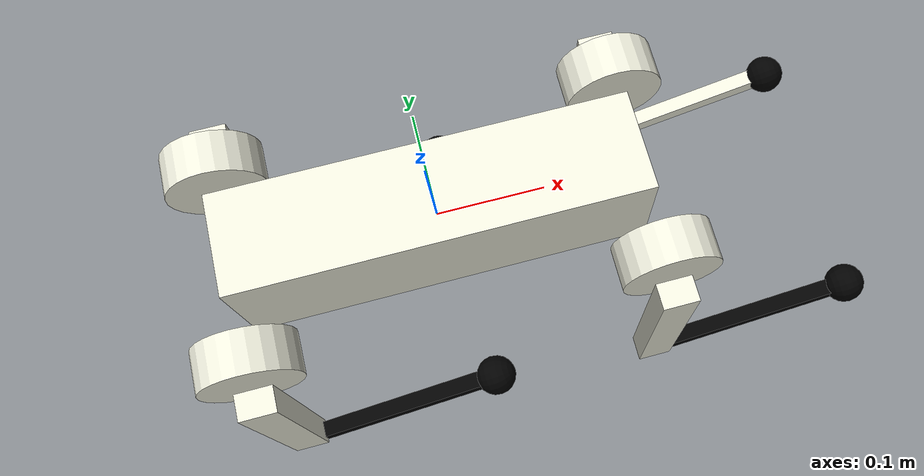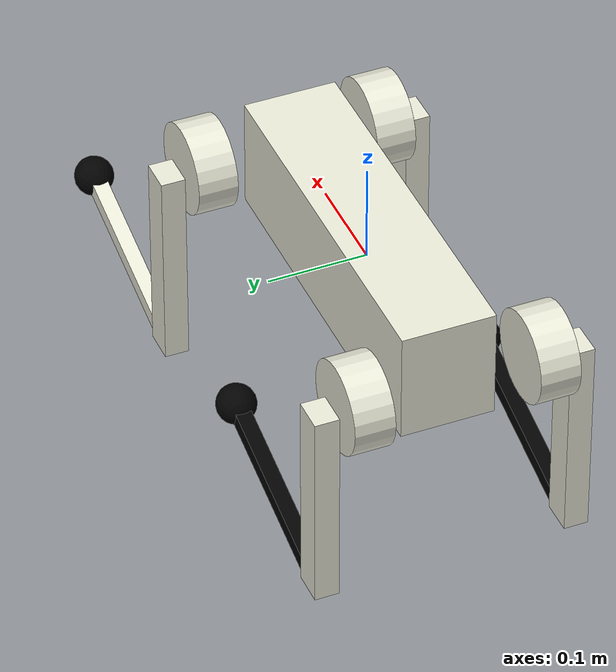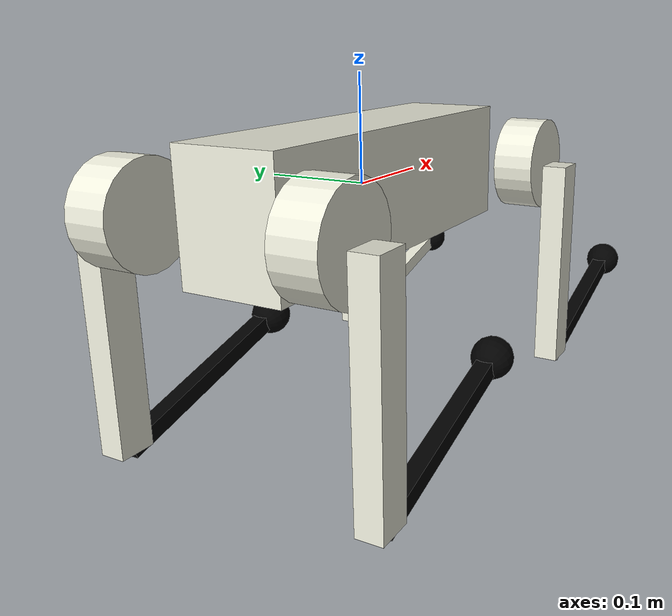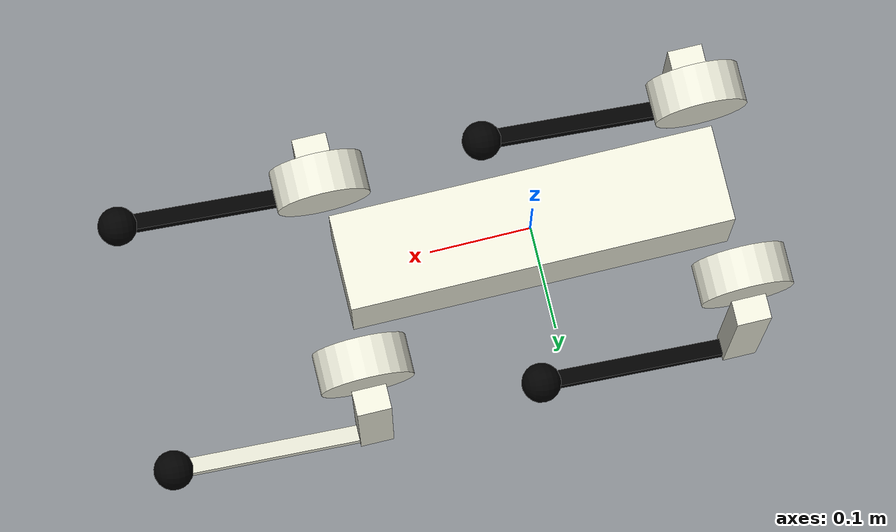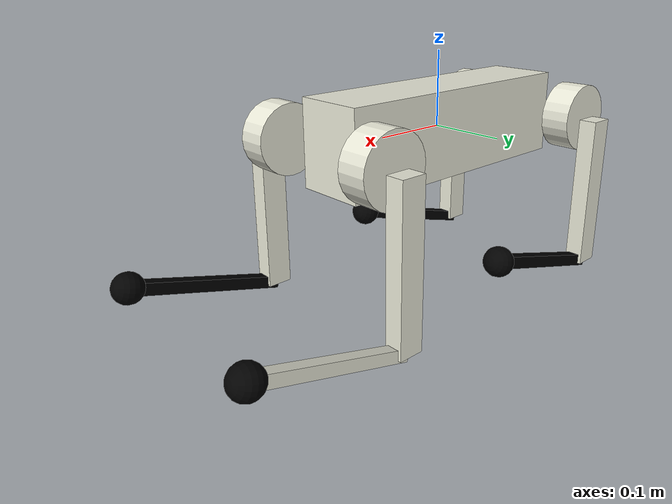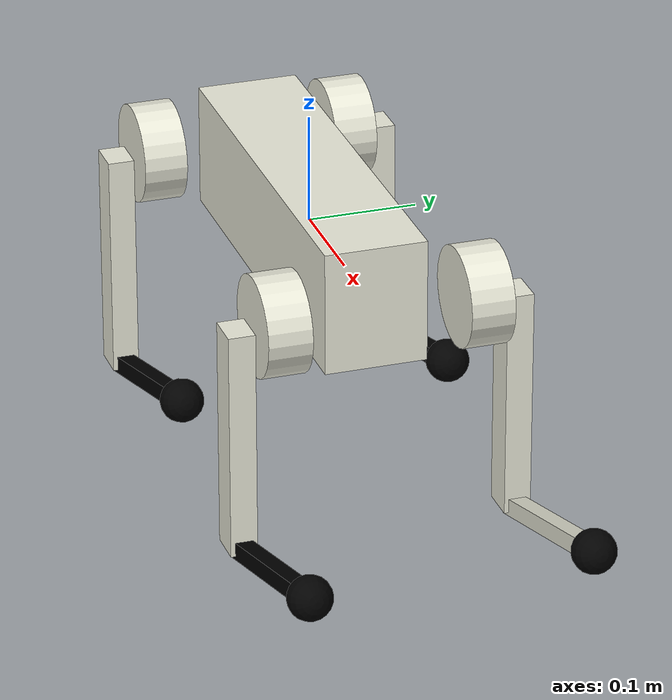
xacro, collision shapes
<?xml version="1.0" ?>
<robot name="robot_description" xmlns:xacro="http://www.ros.org/wiki/xacro">
  <material name="black">
    <color rgba="0.0 0.0 0.0 1.0"/>
  </material>
  <material name="blue">
    <color rgba="0.0 0.0 0.8 1.0"/>
  </material>
  <material name="green">
    <color rgba="0.0 0.8 0.0 1.0"/>
  </material>
  <material name="grey">
    <color rgba="0.2 0.2 0.2 1.0"/>
  </material>
  <material name="silver">
    <color rgba="0.913725490196 0.913725490196 0.847058823529 1.0"/>
  </material>
  <material name="orange">
    <color rgba="1.0 0.423529411765 0.0392156862745 1.0"/>
  </material>
  <material name="brown">
    <color rgba="0.870588235294 0.811764705882 0.764705882353 1.0"/>
  </material>
  <material name="red">
    <color rgba="0.8 0.0 0.0 1.0"/>
  </material>
  <material name="white">
    <color rgba="1.0 1.0 1.0 1.0"/>
  </material>

  <joint name="floating_base" type="fixed">
    <origin rpy="0 0 0" xyz="0 0 0"/>
    <parent link="base"/>
    <child link="trunk"/>
  </joint>

  <link name="base">
    <visual>
      <origin rpy="0 0 0" xyz="0 0 0"/>
      <geometry>
        <box size="0.001 0.001 0.001"/>
      </geometry>
    </visual>
  </link>

  <link name="trunk">
    <visual>
      <origin rpy="0 0 0" xyz="0 0 0"/>
      <geometry>
        <mesh filename="file://$(find robot_description)/meshes/trunk.stl" scale="1 1 1"/>
      </geometry>
      <material name="silver"/>
    </visual>
    <collision>
      <origin rpy="0 0 0" xyz="0 0 0"/>
      <geometry>
        <box size="0.3762 0.0935 0.114"/>
      </geometry>
    </collision>
    <inertial>
      <origin rpy="0 0 0" xyz="0.011611 0.004437 0.000108"/>
      <mass value="4.8"/>
      <inertia ixx="0.016130741919" ixy="0.000593180607" ixz="7.324662e-06" iyy="0.036507810812" iyz="2.0969537e-05" izz="0.044693872053"/>
    </inertial>
  </link>

  <joint name="imu_joint" type="fixed">
    <parent link="trunk"/>
    <child link="imu_link"/>
    <origin rpy="0 0 0" xyz="-0.01592 -0.06659 -0.00617"/>
  </joint>
  <link name="imu_link">
    <inertial>
      <mass value="0.001"/>
      <origin rpy="0 0 0" xyz="0 0 0"/>
      <inertia ixx="0.0001" ixy="0" ixz="0" iyy="0.0001" iyz="0" izz="0.0001"/>
    </inertial>
    <visual>
      <origin rpy="0 0 0" xyz="0 0 0"/>
      <geometry>
        <box size="0.001 0.001 0.001"/>
      </geometry>
      <material name="red"/>
    </visual>
  </link>
  <joint name="FR_hip_joint" type="revolute">
    <origin rpy="0 0 0" xyz="0.1881 -0.04675 0"/>
    <parent link="trunk"/>
    <child link="FR_hip"/>
    <axis xyz="1 0 0"/>
    <dynamics damping="0" friction="0"/>
    <limit effort="23.7" lower="-0.863" upper="0.863" velocity="30.1"/>
  </joint>
  <link name="FR_hip">
    <visual>
      <origin rpy="3.14159265359 0 0" xyz="0 0 0"/>
      <geometry>
        <mesh filename="file://$(find robot_description)/meshes/hip.stl" scale="1 1 1"/>
      </geometry>
      <material name="silver"/>
    </visual>
    <collision>
      <origin rpy="1.57079632679 0 0" xyz="0 -0.045 0"/>
      <geometry>
        <cylinder length="0.04" radius="0.046"/>
      </geometry>
    </collision>
    <inertial>
      <origin rpy="0 0 0" xyz="-0.00541 0.00074 6e-06"/>
      <mass value="0.510299"/>
      <inertia ixx="0.00030528937" ixy="7.788013e-06" ixz="2.2016e-07" iyy="0.000590894859" iyz="1.7175e-08" izz="0.000396594572"/>
    </inertial>
  </link>
  <joint name="FR_hip_fixed" type="fixed">
    <origin rpy="0 0 0" xyz="0 -0.08 0"/>
    <parent link="FR_hip"/>
    <child link="FR_thigh_shoulder"/>
  </joint>
  <!-- this link is only for collision -->
  <link name="FR_thigh_shoulder">
  </link>
  <joint name="FR_thigh_joint" type="revolute">
    <origin rpy="0 0 0" xyz="0 -0.08 0"/>
    <parent link="FR_hip"/>
    <child link="FR_thigh"/>
    <axis xyz="0 1 0"/>
    <dynamics damping="0" friction="0"/>
    <limit effort="23.7" lower="-0.686" upper="4.501" velocity="30.1"/>
  </joint>
  <link name="FR_thigh">
    <visual>
      <origin rpy="0 0 0" xyz="0 0 0"/>
      <geometry>
        <mesh filename="file://$(find robot_description)/meshes/thigh_mirror.stl" scale="1 1 1"/>
      </geometry>
      <material name="silver"/>
    </visual>
    <collision>
      <origin rpy="0 1.57079632679 0" xyz="0 0 -0.1065"/>
      <geometry>
        <box size="0.213 0.0245 0.034"/>
      </geometry>
    </collision>
    <inertial>
      <origin rpy="0 0 0" xyz="-0.003468 0.018947 -0.032736"/>
      <mass value="0.898919"/>
      <inertia ixx="0.005395867678" ixy="-1.02809e-07" ixz="0.000337529085" iyy="0.005142451046" iyz="5.816563e-06" izz="0.00102478732"/>
    </inertial>
  </link>
  <joint name="FR_calf_joint" type="revolute">
    <origin rpy="0 0 0" xyz="0 0 -0.213"/>
    <parent link="FR_thigh"/>
    <child link="FR_calf"/>
    <axis xyz="0 1 0"/>
    <dynamics damping="0" friction="0"/>
    <limit effort="35.55" lower="-2.818" upper="-0.888" velocity="20.06"/>
  </joint>
  <link name="FR_calf">
    <visual>
      <origin rpy="0 0 0" xyz="0 0 0"/>
      <geometry>
        <mesh filename="file://$(find robot_description)/meshes/calf.stl" scale="1 1 1"/>
      </geometry>
      <material name="black"/>
    </visual>
    <collision>
      <origin rpy="0 1.57079632679 0" xyz="0 0 -0.1065"/>
      <geometry>
        <box size="0.213 0.016 0.016"/>
      </geometry>
    </collision>
    <inertial>
      <origin rpy="0 0 0" xyz="0.006286 0.001307 -0.122269"/>
      <mass value="0.158015"/>
      <inertia ixx="0.003607648222" ixy="1.494971e-06" ixz="-0.000132778525" iyy="0.003626771492" iyz="-2.8638535e-05" izz="3.5148003e-05"/>
    </inertial>
  </link>
  <joint name="FR_foot_fixed" type="fixed" dont_collapse="true">
    <origin rpy="0 0 0" xyz="0 0 -0.213"/>
    <parent link="FR_calf"/>
    <child link="FR_foot"/>
  </joint>
  <link name="FR_foot">
    <visual>
      <origin rpy="0 0 0" xyz="0 0 0"/>
      <geometry>
        <sphere radius="0.01"/>
      </geometry>
      <material name="black"/>
    </visual>
    <collision>
      <origin rpy="0 0 0" xyz="0 0 0"/>
      <geometry>
        <sphere radius="0.02"/>
      </geometry>
    </collision>
    <inertial>
      <mass value="0.06"/>
      <inertia ixx="9.6e-06" ixy="0.0" ixz="0.0" iyy="9.6e-06" iyz="0.0" izz="9.6e-06"/>
    </inertial>
  </link>

  <joint name="FL_hip_joint" type="revolute">
    <origin rpy="0 0 0" xyz="0.1881 0.04675 0"/>
    <parent link="trunk"/>
    <child link="FL_hip"/>
    <axis xyz="1 0 0"/>
    <dynamics damping="0" friction="0"/>
    <limit effort="23.7" lower="-0.863" upper="0.863" velocity="30.1"/>
  </joint>
  <link name="FL_hip">
    <visual>
      <origin rpy="0 0 0" xyz="0 0 0"/>
      <geometry>
        <mesh filename="file://$(find robot_description)/meshes/hip.stl" scale="1 1 1"/>
      </geometry>
      <material name="silver"/>
    </visual>
    <collision>
      <origin rpy="1.57079632679 0 0" xyz="0 0.045 0"/>
      <geometry>
        <cylinder length="0.04" radius="0.046"/>
      </geometry>
    </collision>
    <inertial>
      <origin rpy="0 0 0" xyz="-0.00541 -0.00074 6e-06"/>
      <mass value="0.510299"/>
      <inertia ixx="0.00030528937" ixy="-7.788013e-06" ixz="2.2016e-07" iyy="0.000590894859" iyz="-1.7175e-08" izz="0.000396594572"/>
    </inertial>
  </link>
  <joint name="FL_hip_fixed" type="fixed">
    <origin rpy="0 0 0" xyz="0 0.08 0"/>
    <parent link="FL_hip"/>
    <child link="FL_thigh_shoulder"/>
  </joint>
  <!-- this link is only for collision -->
  <link name="FL_thigh_shoulder">
  </link>
  <joint name="FL_thigh_joint" type="revolute">
    <origin rpy="0 0 0" xyz="0 0.08 0"/>
    <parent link="FL_hip"/>
    <child link="FL_thigh"/>
    <axis xyz="0 1 0"/>
    <dynamics damping="0" friction="0"/>
    <limit effort="23.7" lower="-0.686" upper="4.501" velocity="30.1"/>
  </joint>
  <link name="FL_thigh">
    <visual>
      <origin rpy="0 0 0" xyz="0 0 0"/>
      <geometry>
        <mesh filename="file://$(find robot_description)/meshes/thigh.stl" scale="1 1 1"/>
      </geometry>
      <material name="silver"/>
    </visual>
    <collision>
      <origin rpy="0 1.57079632679 0" xyz="0 0 -0.1065"/>
      <geometry>
        <box size="0.213 0.0245 0.034"/>
      </geometry>
    </collision>
    <inertial>
      <origin rpy="0 0 0" xyz="-0.003468 -0.018947 -0.032736"/>
      <mass value="0.898919"/>
      <inertia ixx="0.005395867678" ixy="1.02809e-07" ixz="0.000337529085" iyy="0.005142451046" iyz="-5.816563e-06" izz="0.00102478732"/>
    </inertial>
  </link>
  <joint name="FL_calf_joint" type="revolute">
    <origin rpy="0 0 0" xyz="0 0 -0.213"/>
    <parent link="FL_thigh"/>
    <child link="FL_calf"/>
    <axis xyz="0 1 0"/>
    <dynamics damping="0" friction="0"/>
    <limit effort="35.55" lower="-2.818" upper="-0.888" velocity="20.06"/>
  </joint>
  <link name="FL_calf">
    <visual>
      <origin rpy="0 0 0" xyz="0 0 0"/>
      <geometry>
        <mesh filename="file://$(find robot_description)/meshes/calf.stl" scale="1 1 1"/>
      </geometry>
      <material name="silver"/>
    </visual>
    <collision>
      <origin rpy="0 1.57079632679 0" xyz="0 0 -0.1065"/>
      <geometry>
        <box size="0.213 0.016 0.016"/>
      </geometry>
    </collision>
    <inertial>
      <origin rpy="0 0 0" xyz="0.006286 0.001307 -0.122269"/>
      <mass value="0.158015"/>
      <inertia ixx="0.003607648222" ixy="1.494971e-06" ixz="-0.000132778525" iyy="0.003626771492" iyz="-2.8638535e-05" izz="3.5148003e-05"/>
    </inertial>
  </link>
  <joint name="FL_foot_fixed" type="fixed" dont_collapse="true">
    <origin rpy="0 0 0" xyz="0 0 -0.213"/>
    <parent link="FL_calf"/>
    <child link="FL_foot"/>
  </joint>
  <link name="FL_foot">
    <visual>
      <origin rpy="0 0 0" xyz="0 0 0"/>
      <geometry>
        <sphere radius="0.01"/>
      </geometry>
      <material name="black"/>
    </visual>
    <collision>
      <origin rpy="0 0 0" xyz="0 0 0"/>
      <geometry>
        <sphere radius="0.02"/>
      </geometry>
    </collision>
    <inertial>
      <mass value="0.06"/>
      <inertia ixx="9.6e-06" ixy="0.0" ixz="0.0" iyy="9.6e-06" iyz="0.0" izz="9.6e-06"/>
    </inertial>
  </link>

  <joint name="RR_hip_joint" type="revolute">
    <origin rpy="0 0 0" xyz="-0.1881 -0.04675 0"/>
    <parent link="trunk"/>
    <child link="RR_hip"/>
    <axis xyz="1 0 0"/>
    <dynamics damping="0" friction="0"/>
    <limit effort="23.7" lower="-0.863" upper="0.863" velocity="30.1"/>
  </joint>
  <link name="RR_hip">
    <visual>
      <origin rpy="3.14159265359 3.14159265359 0" xyz="0 0 0"/>
      <geometry>
        <mesh filename="file://$(find robot_description)/meshes/hip.stl" scale="1 1 1"/>
      </geometry>
      <material name="silver"/>
    </visual>
    <collision>
      <origin rpy="1.57079632679 0 0" xyz="0 -0.045 0"/>
      <geometry>
        <cylinder length="0.04" radius="0.046"/>
      </geometry>
    </collision>
    <inertial>
      <origin rpy="0 0 0" xyz="0.00541 0.00074 6e-06"/>
      <mass value="0.510299"/>
      <inertia ixx="0.00030528937" ixy="-7.788013e-06" ixz="-2.2016e-07" iyy="0.000590894859" iyz="1.7175e-08" izz="0.000396594572"/>
    </inertial>
  </link>
  <joint name="RR_hip_fixed" type="fixed">
    <origin rpy="0 0 0" xyz="0 -0.08 0"/>
    <parent link="RR_hip"/>
    <child link="RR_thigh_shoulder"/>
  </joint>
  <!-- this link is only for collision -->
  <link name="RR_thigh_shoulder">
  </link>
  <joint name="RR_thigh_joint" type="revolute">
    <origin rpy="0 0 0" xyz="0 -0.08 0"/>
    <parent link="RR_hip"/>
    <child link="RR_thigh"/>
    <axis xyz="0 1 0"/>
    <dynamics damping="0" friction="0"/>
    <limit effort="23.7" lower="-0.686" upper="4.501" velocity="30.1"/>
  </joint>
  <link name="RR_thigh">
    <visual>
      <origin rpy="0 0 0" xyz="0 0 0"/>
      <geometry>
        <mesh filename="file://$(find robot_description)/meshes/thigh_mirror.stl" scale="1 1 1"/>
      </geometry>
      <material name="silver"/>
    </visual>
    <collision>
      <origin rpy="0 1.57079632679 0" xyz="0 0 -0.1065"/>
      <geometry>
        <box size="0.213 0.0245 0.034"/>
      </geometry>
    </collision>
    <inertial>
      <origin rpy="0 0 0" xyz="-0.003468 0.018947 -0.032736"/>
      <mass value="0.898919"/>
      <inertia ixx="0.005395867678" ixy="-1.02809e-07" ixz="0.000337529085" iyy="0.005142451046" iyz="5.816563e-06" izz="0.00102478732"/>
    </inertial>
  </link>
  <joint name="RR_calf_joint" type="revolute">
    <origin rpy="0 0 0" xyz="0 0 -0.213"/>
    <parent link="RR_thigh"/>
    <child link="RR_calf"/>
    <axis xyz="0 1 0"/>
    <dynamics damping="0" friction="0"/>
    <limit effort="35.55" lower="-2.818" upper="-0.888" velocity="20.06"/>
  </joint>
  <link name="RR_calf">
    <visual>
      <origin rpy="0 0 0" xyz="0 0 0"/>
      <geometry>
        <mesh filename="file://$(find robot_description)/meshes/calf.stl" scale="1 1 1"/>
      </geometry>
      <material name="black"/>
    </visual>
    <collision>
      <origin rpy="0 1.57079632679 0" xyz="0 0 -0.1065"/>
      <geometry>
        <box size="0.213 0.016 0.016"/>
      </geometry>
    </collision>
    <inertial>
      <origin rpy="0 0 0" xyz="0.006286 0.001307 -0.122269"/>
      <mass value="0.158015"/>
      <inertia ixx="0.003607648222" ixy="1.494971e-06" ixz="-0.000132778525" iyy="0.003626771492" iyz="-2.8638535e-05" izz="3.5148003e-05"/>
    </inertial>
  </link>
  <joint name="RR_foot_fixed" type="fixed" dont_collapse="true">
    <origin rpy="0 0 0" xyz="0 0 -0.213"/>
    <parent link="RR_calf"/>
    <child link="RR_foot"/>
  </joint>
  <link name="RR_foot">
    <visual>
      <origin rpy="0 0 0" xyz="0 0 0"/>
      <geometry>
        <sphere radius="0.01"/>
      </geometry>
      <material name="black"/>
    </visual>
    <collision>
      <origin rpy="0 0 0" xyz="0 0 0"/>
      <geometry>
        <sphere radius="0.02"/>
      </geometry>
    </collision>
    <inertial>
      <mass value="0.06"/>
      <inertia ixx="9.6e-06" ixy="0.0" ixz="0.0" iyy="9.6e-06" iyz="0.0" izz="9.6e-06"/>
    </inertial>
  </link>

  <joint name="RL_hip_joint" type="revolute">
    <origin rpy="0 0 0" xyz="-0.1881 0.04675 0"/>
    <parent link="trunk"/>
    <child link="RL_hip"/>
    <axis xyz="1 0 0"/>
    <dynamics damping="0" friction="0"/>
    <limit effort="23.7" lower="-0.863" upper="0.863" velocity="30.1"/>
  </joint>
  <link name="RL_hip">
    <visual>
      <origin rpy="0 3.14159265359 0" xyz="0 0 0"/>
      <geometry>
        <mesh filename="file://$(find robot_description)/meshes/hip.stl" scale="1 1 1"/>
      </geometry>
      <material name="silver"/>
    </visual>
    <collision>
      <origin rpy="1.57079632679 0 0" xyz="0 0.045 0"/>
      <geometry>
        <cylinder length="0.04" radius="0.046"/>
      </geometry>
    </collision>
    <inertial>
      <origin rpy="0 0 0" xyz="0.00541 -0.00074 6e-06"/>
      <mass value="0.510299"/>
      <inertia ixx="0.00030528937" ixy="7.788013e-06" ixz="-2.2016e-07" iyy="0.000590894859" iyz="-1.7175e-08" izz="0.000396594572"/>
    </inertial>
  </link>
  <joint name="RL_hip_fixed" type="fixed">
    <origin rpy="0 0 0" xyz="0 0.08 0"/>
    <parent link="RL_hip"/>
    <child link="RL_thigh_shoulder"/>
  </joint>
  <!-- this link is only for collision -->
  <link name="RL_thigh_shoulder">
  </link>
  <joint name="RL_thigh_joint" type="revolute">
    <origin rpy="0 0 0" xyz="0 0.08 0"/>
    <parent link="RL_hip"/>
    <child link="RL_thigh"/>
    <axis xyz="0 1 0"/>
    <dynamics damping="0" friction="0"/>
    <limit effort="23.7" lower="-0.686" upper="4.501" velocity="30.1"/>
  </joint>
  <link name="RL_thigh">
    <visual>
      <origin rpy="0 0 0" xyz="0 0 0"/>
      <geometry>
        <mesh filename="file://$(find robot_description)/meshes/thigh.stl" scale="1 1 1"/>
      </geometry>
      <material name="silver"/>
    </visual>
    <collision>
      <origin rpy="0 1.57079632679 0" xyz="0 0 -0.1065"/>
      <geometry>
        <box size="0.213 0.0245 0.034"/>
      </geometry>
    </collision>
    <inertial>
      <origin rpy="0 0 0" xyz="-0.003468 -0.018947 -0.032736"/>
      <mass value="0.898919"/>
      <inertia ixx="0.005395867678" ixy="1.02809e-07" ixz="0.000337529085" iyy="0.005142451046" iyz="-5.816563e-06" izz="0.00102478732"/>
    </inertial>
  </link>
  <joint name="RL_calf_joint" type="revolute">
    <origin rpy="0 0 0" xyz="0 0 -0.213"/>
    <parent link="RL_thigh"/>
    <child link="RL_calf"/>
    <axis xyz="0 1 0"/>
    <dynamics damping="0" friction="0"/>
    <limit effort="35.55" lower="-2.818" upper="-0.888" velocity="20.06"/>
  </joint>
  <link name="RL_calf">
    <visual>
      <origin rpy="0 0 0" xyz="0 0 0"/>
      <geometry>
        <mesh filename="file://$(find robot_description)/meshes/calf.stl" scale="1 1 1"/>
      </geometry>
      <material name="black"/>
    </visual>
    <collision>
      <origin rpy="0 1.57079632679 0" xyz="0 0 -0.1065"/>
      <geometry>
        <box size="0.213 0.016 0.016"/>
      </geometry>
    </collision>
    <inertial>
      <origin rpy="0 0 0" xyz="0.006286 0.001307 -0.122269"/>
      <mass value="0.158015"/>
      <inertia ixx="0.003607648222" ixy="1.494971e-06" ixz="-0.000132778525" iyy="0.003626771492" iyz="-2.8638535e-05" izz="3.5148003e-05"/>
    </inertial>
  </link>
  <joint name="RL_foot_fixed" type="fixed" dont_collapse="true">
    <origin rpy="0 0 0" xyz="0 0 -0.213"/>
    <parent link="RL_calf"/>
    <child link="RL_foot"/>
  </joint>
  <link name="RL_foot">
    <visual>
      <origin rpy="0 0 0" xyz="0 0 0"/>
      <geometry>
        <sphere radius="0.01"/>
      </geometry>
      <material name="black"/>
    </visual>
    <collision>
      <origin rpy="0 0 0" xyz="0 0 0"/>
      <geometry>
        <sphere radius="0.02"/>
      </geometry>
    </collision>
    <inertial>
      <mass value="0.06"/>
      <inertia ixx="9.6e-06" ixy="0.0" ixz="0.0" iyy="9.6e-06" iyz="0.0" izz="9.6e-06"/>
    </inertial>
  </link>

  <gazebo reference="ejt">
    <material>Gazebo/Red</material>
  </gazebo>

  <gazebo reference="imu_link">
    <gravity>true</gravity>
    <sensor name="imu_sensor" type="imu">
      <always_on>true</always_on>
      <update_rate>1000</update_rate>
      <visualize>true</visualize>
      <topic>__default_topic__</topic>
      <plugin filename="libgazebo_ros_imu_sensor.so" name="imu_plugin">
        <topicName>trunk_imu</topicName>
        <bodyName>imu_link</bodyName>
        <updateRateHZ>1000.0</updateRateHZ>
        <gaussianNoise>0.0</gaussianNoise>
        <xyzOffset>0 0 0</xyzOffset>
        <rpyOffset>0 0 0</rpyOffset>
        <frameName>imu_link</frameName>
      </plugin>
      <pose>0 0 0 0 0 0</pose>
    </sensor>
  </gazebo>

  <ros2_control name="FL_hip" type="system">
    <hardware>
      <plugin>gazebo_ros2_control/GazeboSystem</plugin>
    </hardware>

    <joint name="FL_hip_joint">
      <command_interface name="effort"/>
      <state_interface name="position"/>
      <state_interface name="velocity"/>
      <state_interface name="effort"/>

    </joint>
  </ros2_control>

  <ros2_control name="FR_hip" type="system">
    <hardware>
      <plugin>gazebo_ros2_control/GazeboSystem</plugin>
    </hardware>

    <joint name="FR_hip_joint">
      <command_interface name="effort"/>
      <state_interface name="position"/>
      <state_interface name="velocity"/>
      <state_interface name="effort"/>
    </joint>
  </ros2_control>

  <ros2_control name="RL_hip" type="system">
    <hardware>
      <plugin>gazebo_ros2_control/GazeboSystem</plugin>
    </hardware>

    <joint name="RL_hip_joint">
      <command_interface name="effort"/>
      <state_interface name="position"/>
      <state_interface name="velocity"/>
      <state_interface name="effort"/>
    </joint>
  </ros2_control>

  <ros2_control name="RR_hip" type="system">
    <hardware>
      <plugin>gazebo_ros2_control/GazeboSystem</plugin>
    </hardware>

    <joint name="RR_hip_joint">
      <command_interface name="effort"/>
      <state_interface name="position"/>
      <state_interface name="velocity"/>
      <state_interface name="effort"/>
    </joint>
  </ros2_control>

  <!-- .............THIGH JOINTS............. -->

  <ros2_control name="FL_thigh" type="system">
    <hardware>
      <plugin>gazebo_ros2_control/GazeboSystem</plugin>
    </hardware>

    <joint name="FL_thigh_joint">
      <command_interface name="effort"/>
      <state_interface name="position"/>
      <state_interface name="velocity"/>
      <state_interface name="effort"/>
    </joint>
  </ros2_control>

  <ros2_control name="FR_thigh" type="system">
    <hardware>
      <plugin>gazebo_ros2_control/GazeboSystem</plugin>
    </hardware>

    <joint name="FR_thigh_joint">
      <command_interface name="effort"/>
      <state_interface name="position"/>
      <state_interface name="velocity"/>
      <state_interface name="effort"/>
    </joint>
  </ros2_control>

  <ros2_control name="RL_thigh" type="system">
    <hardware>
      <plugin>gazebo_ros2_control/GazeboSystem</plugin>
    </hardware>

    <joint name="RL_thigh_joint">
      <command_interface name="effort"/>
      <state_interface name="position"/>
      <state_interface name="velocity"/>
      <state_interface name="effort"/>
    </joint>
  </ros2_control>

  <ros2_control name="RR_thigh" type="system">
    <hardware>
      <plugin>gazebo_ros2_control/GazeboSystem</plugin>
    </hardware>

    <joint name="RR_thigh_joint">
      <command_interface name="effort"/>
      <state_interface name="position"/>
      <state_interface name="velocity"/>
      <state_interface name="effort"/>
    </joint>
  </ros2_control>

  <!-- .............CALF JOINTS............. -->

  <ros2_control name="FL_calf" type="system">
    <hardware>
      <plugin>gazebo_ros2_control/GazeboSystem</plugin>
    </hardware>

    <joint name="FL_calf_joint">
      <command_interface name="effort"/>
      <state_interface name="position"/>
      <state_interface name="velocity"/>
      <state_interface name="effort"/>
    </joint>
  </ros2_control>

  <ros2_control name="FR_calf" type="system">
    <hardware>
      <plugin>gazebo_ros2_control/GazeboSystem</plugin>
    </hardware>

    <joint name="FR_calf_joint">
      <command_interface name="effort"/>
      <state_interface name="position"/>
      <state_interface name="velocity"/>
      <state_interface name="effort"/>

    </joint>
  </ros2_control>

  <ros2_control name="RL_calf" type="system">
    <hardware>
      <plugin>gazebo_ros2_control/GazeboSystem</plugin>
    </hardware>

    <joint name="RL_calf_joint">
      <command_interface name="effort"/>
      <state_interface name="position"/>
      <state_interface name="velocity"/>
      <state_interface name="effort"/>

    </joint>
  </ros2_control>

  <ros2_control name="RR_calf" type="system">
    <hardware>
      <plugin>gazebo_ros2_control/GazeboSystem</plugin>
    </hardware>

    <joint name="RR_calf_joint">
      <command_interface name="effort"/>
      <state_interface name="position"/>
      <state_interface name="velocity"/>
      <state_interface name="effort"/>

    </joint>
  </ros2_control>

  <gazebo>
    <plugin filename="libgazebo_ros_p3d.so" name="p3d_base_controller">
      <ros>
        <argument>odom:=odom/ground_truth</argument>
      </ros>
      <body_name>base</body_name>
      <frame_name>world</frame_name>
      <update_rate>250.0</update_rate>
      <xyz_offset>0 0 0</xyz_offset>
      <rpy_offset>0 0 0</rpy_offset>
      <gaussian_noise>0.00001</gaussian_noise>
    </plugin>
  </gazebo>

  <gazebo>

    <plugin name="gazebo_ros_init" filename="libgazebo_ros_init.so">
      <ros>

        <namespace>/</namespace>
      </ros>
    </plugin>

    <plugin name="gazebo_ros_factory" filename="libgazebo_ros_factory.so">
      <ros>
        <namespace>/</namespace>
      </ros>
    </plugin>

    <plugin name="gazebo_ros_state" filename="libgazebo_ros_state.so">
      <ros>
        <namespace>/</namespace>
      </ros>
    </plugin>
  </gazebo>

  <gazebo>
    <plugin filename="libgazebo_ros2_control.so" name="gazebo_ros2_control">
      <parameters>$(find robot_gazebo)/config/go1_ros_control.yaml</parameters>
    </plugin>
  </gazebo>

 </robot>
